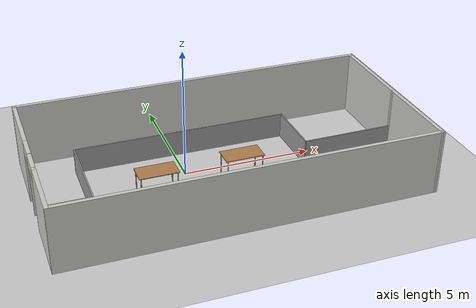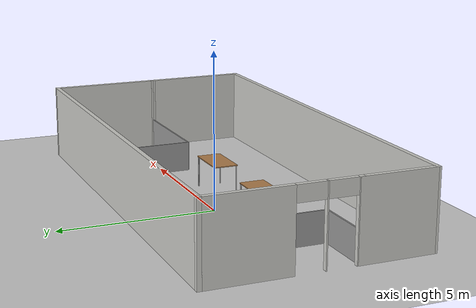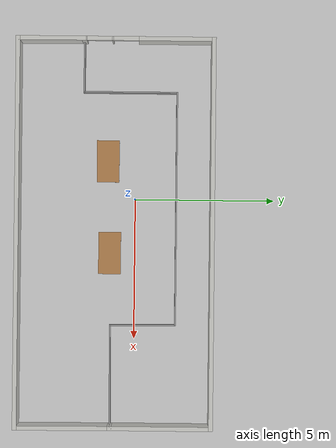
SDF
<sdf version="1.6">
 <world name="default">
  <light name="sun" type="directional">
   <pose>0 0 10 0 -0 0</pose>
   <diffuse>0.8 0.8 0.8 1</diffuse>
   <specular>0.2 0.2 0.2 1</specular>
   <attenuation>
    <range>1000</range>
    <constant>0.9</constant>
    <linear>0.01</linear>
    <quadratic>0.001</quadratic>
   </attenuation>
   <direction>-0.5 0.5 -1</direction>
  </light>
  <gravity>0 0 -9.8</gravity>
  <magnetic_field>6e-06 2.3e-05 -4.2e-05</magnetic_field>
  <atmosphere type="adiabatic"/>
  <physics name="default_physics" default="0" type="ode">
   <max_step_size>0.01</max_step_size>
   <real_time_factor>1</real_time_factor>
   <real_time_update_rate>100</real_time_update_rate>
   <ode>
    <solver>
     <type>quick</type>
     <iters>100</iters>
     <precon_iters>0</precon_iters>
     <sor>1</sor>
     <use_dynamic_moi_rescaling>0</use_dynamic_moi_rescaling>
    </solver>
    <constraints>
     <cfm>0</cfm>
     <erp>0.5</erp>
     <contact_max_correcting_vel>1000</contact_max_correcting_vel>
     <contact_surface_layer>0</contact_surface_layer>
    </constraints>
   </ode>
  </physics>
  <scene><ambient>0.4 0.4 0.4 1</ambient><background>0.7 0.7 0.7 1</background><shadows>0</shadows></scene>
  <spherical_coordinates>
   <surface_model>EARTH_WGS84</surface_model>
   <latitude_deg>0</latitude_deg>
   <longitude_deg>0</longitude_deg>
   <elevation>0</elevation>
   <heading_deg>0</heading_deg>
  </spherical_coordinates>
  <model name="mfi_floor_trial1">
   <pose>1.22275 -0.717257 0 0 -0 0</pose>
   <link name="Wall_10">
    <collision name="Wall_10_Collision">
     <geometry><box><size>1.9 0.05 1</size></box></geometry>
     <pose>0 0 0.5 0 -0 0</pose>
    </collision>
    <visual name="Wall_10_Visual">
     <pose>0 0 0.5 0 -0 0</pose>
     <geometry><box><size>1.9 0.05 1</size></box></geometry>
     <material>
      <script><uri>file://media/materials/scripts/gazebo.material</uri><name>Gazebo/Grey</name></script>
      <ambient>1 1 1 1</ambient>
     </material>
     <meta><layer>0</layer></meta>
    </visual>
    <pose>-6.0041 -1.14431 0 0 -0 3.14159</pose>
   </link>
   <link name="Wall_14">
    <collision name="Wall_14_Collision">
     <geometry><box><size>2.48851 0.15 2.5</size></box></geometry>
     <pose>0 0 1.25 0 -0 0</pose>
    </collision>
    <visual name="Wall_14_Visual">
     <pose>0 0 1.25 0 -0 0</pose>
     <geometry><box><size>2.48851 0.15 2.5</size></box></geometry>
     <material>
      <script><uri>file://media/materials/scripts/gazebo.material</uri><name>Gazebo/CeilingTiled</name></script>
      <ambient>0.729412 0.741176 0.713726 1</ambient>
     </material>
     <meta><layer>0</layer></meta>
    </visual>
    <pose>-6.92509 -2.31381 0 0 -0 -1.56738</pose>
   </link>
   <link name="Wall_16">
    <pose>-6.92809 1.16719 0 0 -0 1.5708</pose>
    <visual name="Wall_16_Visual_0">
     <pose>-2.29327 0 1.25 0 -0 0</pose>
     <geometry><box><size>0.1769 0.15 2.5</size></box></geometry>
     <material>
      <script><uri>file://media/materials/scripts/gazebo.material</uri><name>Gazebo/CeilingTiled</name></script>
      <ambient>0.729412 0.741176 0.713726 1</ambient>
     </material>
     <meta><layer>0</layer></meta>
    </visual>
    <collision name="Wall_16_Collision_0">
     <geometry><box><size>0.1769 0.15 2.5</size></box></geometry>
     <pose>-2.29327 0 1.25 0 -0 0</pose>
    </collision>
    <visual name="Wall_16_Visual_1">
     <pose>-1.28401 0 1.25 0 -0 0</pose>
     <geometry><box><size>0.041629 0.15 2.5</size></box></geometry>
     <material>
      <script><uri>file://media/materials/scripts/gazebo.material</uri><name>Gazebo/CeilingTiled</name></script>
      <ambient>0.729412 0.741176 0.713726 1</ambient>
     </material>
     <meta><layer>0</layer></meta>
    </visual>
    <collision name="Wall_16_Collision_1">
     <geometry><box><size>0.041629 0.15 2.5</size></box></geometry>
     <pose>-1.28401 0 1.25 0 -0 0</pose>
    </collision>
    <visual name="Wall_16_Visual_2">
     <pose>1.00926 0 1.25 0 -0 0</pose>
     <geometry><box><size>2.74491 0.15 2.5</size></box></geometry>
     <material>
      <script><uri>file://media/materials/scripts/gazebo.material</uri><name>Gazebo/CeilingTiled</name></script>
      <ambient>0.729412 0.741176 0.713726 1</ambient>
     </material>
     <meta><layer>0</layer></meta>
    </visual>
    <collision name="Wall_16_Collision_2">
     <geometry><box><size>2.74491 0.15 2.5</size></box></geometry>
     <pose>1.00926 0 1.25 0 -0 0</pose>
    </collision>
    <visual name="Wall_16_Visual_3">
     <pose>-1.75482 0 2.25 0 -0 0</pose>
     <geometry><box><size>0.9 0.15 0.5</size></box></geometry>
     <material>
      <script><uri>file://media/materials/scripts/gazebo.material</uri><name>Gazebo/CeilingTiled</name></script>
      <ambient>0.729412 0.741176 0.713726 1</ambient>
     </material>
     <meta><layer>0</layer></meta>
    </visual>
    <collision name="Wall_16_Collision_3">
     <geometry><box><size>0.9 0.15 0.5</size></box></geometry>
     <pose>-1.75482 0 2.25 0 -0 0</pose>
    </collision>
    <visual name="Wall_16_Visual_4">
     <pose>-0.813192 0 2.25 0 -0 0</pose>
     <geometry><box><size>0.9 0.15 0.5</size></box></geometry>
     <material>
      <script><uri>file://media/materials/scripts/gazebo.material</uri><name>Gazebo/CeilingTiled</name></script>
      <ambient>0.729412 0.741176 0.713726 1</ambient>
     </material>
     <meta><layer>0</layer></meta>
    </visual>
    <collision name="Wall_16_Collision_4">
     <geometry><box><size>0.9 0.15 0.5</size></box></geometry>
     <pose>-0.813192 0 2.25 0 -0 0</pose>
    </collision>
   </link>
   <link name="Wall_20">
    <collision name="Wall_20_Collision">
     <geometry><box><size>13.9871 0.15 2.5</size></box></geometry>
     <pose>0 0 1.25 0 -0 0</pose>
    </collision>
    <visual name="Wall_20_Visual">
     <pose>0 0 1.25 0 -0 0</pose>
     <geometry><box><size>13.9871 0.15 2.5</size></box></geometry>
     <material>
      <script><uri>file://media/materials/scripts/gazebo.material</uri><name>Gazebo/CeilingTiled</name></script>
      <ambient>0.729412 0.741176 0.713726 1</ambient>
     </material>
     <meta><layer>0</layer></meta>
    </visual>
    <pose>-0.009595 3.47869 0 0 -0 0.000723</pose>
   </link>
   <link name="Wall_21">
    <collision name="Wall_21_Collision">
     <geometry><box><size>3.75 0.15 2.5</size></box></geometry>
     <pose>0 0 1.25 0 -0 0</pose>
    </collision>
    <visual name="Wall_21_Visual">
     <pose>0 0 1.25 0 -0 0</pose>
     <geometry><box><size>3.75 0.15 2.5</size></box></geometry>
     <material>
      <script><uri>file://media/materials/scripts/gazebo.material</uri><name>Gazebo/CeilingTiled</name></script>
      <ambient>0.729412 0.741176 0.713726 1</ambient>
     </material>
     <meta><layer>0</layer></meta>
    </visual>
    <pose>6.90891 1.68369 0 0 -0 -1.5708</pose>
   </link>
   <link name="Wall_4">
    <collision name="Wall_4_Collision">
     <geometry><box><size>14 0.15 2.5</size></box></geometry>
     <pose>0 0 1.25 0 -0 0</pose>
    </collision>
    <visual name="Wall_4_Visual">
     <pose>0 0 1.25 0 -0 0</pose>
     <geometry><box><size>14 0.15 2.5</size></box></geometry>
     <material>
      <script><uri>file://media/materials/scripts/gazebo.material</uri><name>Gazebo/CeilingTiled</name></script>
      <ambient>0.729412 0.741176 0.713726 1</ambient>
     </material>
     <meta><layer>0</layer></meta>
    </visual>
    <pose>0.003905 -3.48331 0 0 -0 0</pose>
   </link>
   <link name="Wall_5">
    <collision name="Wall_5_Collision">
     <geometry><box><size>3.51705 0.15 2.5</size></box></geometry>
     <pose>0 0 1.25 0 -0 0</pose>
    </collision>
    <visual name="Wall_5_Visual">
     <pose>0 0 1.25 0 -0 0</pose>
     <geometry><box><size>3.51705 0.15 2.5</size></box></geometry>
     <material>
      <script><uri>file://media/materials/scripts/gazebo.material</uri><name>Gazebo/CeilingTiled</name></script>
      <ambient>0.729412 0.741176 0.713726 1</ambient>
     </material>
     <meta><layer>0</layer></meta>
    </visual>
    <pose>6.9189 -1.79981 0 0 -0 1.57674</pose>
   </link>
   <link name="Wall_6">
    <collision name="Wall_6_Collision">
     <geometry><box><size>3.66511 0.05 1</size></box></geometry>
     <pose>0 0 0.5 0 -0 0</pose>
    </collision>
    <visual name="Wall_6_Visual">
     <pose>0 0 0.5 0 -0 0</pose>
     <geometry><box><size>3.66511 0.05 1</size></box></geometry>
     <material>
      <script><uri>file://media/materials/scripts/gazebo.material</uri><name>Gazebo/Grey</name></script>
      <ambient>1 1 1 1</ambient>
     </material>
     <meta><layer>0</layer></meta>
    </visual>
    <pose>5.10141 -0.130308 0 0 -0 -3.13385</pose>
   </link>
   <link name="Wall_7">
    <collision name="Wall_7_Collision">
     <geometry><box><size>2.38811 0.05 1</size></box></geometry>
     <pose>0 0 0.5 0 -0 0</pose>
    </collision>
    <visual name="Wall_7_Visual">
     <pose>0 0 0.5 0 -0 0</pose>
     <geometry><box><size>2.38811 0.05 1</size></box></geometry>
     <material>
      <script><uri>file://media/materials/scripts/gazebo.material</uri><name>Gazebo/Grey</name></script>
      <ambient>1 1 1 1</ambient>
     </material>
     <meta><layer>0</layer></meta>
    </visual>
    <pose>3.2824 1.02469 0 0 -0 1.58063</pose>
   </link>
   <link name="Wall_8">
    <collision name="Wall_8_Collision">
     <geometry><box><size>8.4 0.05 1</size></box></geometry>
     <pose>0 0 0.5 0 -0 0</pose>
    </collision>
    <visual name="Wall_8_Visual">
     <pose>0 0 0.5 0 -0 0</pose>
     <geometry><box><size>8.4 0.05 1</size></box></geometry>
     <material>
      <script><uri>file://media/materials/scripts/gazebo.material</uri><name>Gazebo/Grey</name></script>
      <ambient>1 1 1 1</ambient>
     </material>
     <meta><layer>0</layer></meta>
    </visual>
    <pose>-0.904095 2.19369 0 0 -0 3.14159</pose>
   </link>
   <link name="Wall_9">
    <collision name="Wall_9_Collision">
     <geometry><box><size>3.388 0.05 1</size></box></geometry>
     <pose>0 0 0.5 0 -0 0</pose>
    </collision>
    <visual name="Wall_9_Visual">
     <pose>0 0 0.5 0 -0 0</pose>
     <geometry><box><size>3.388 0.05 1</size></box></geometry>
     <material>
      <script><uri>file://media/materials/scripts/gazebo.material</uri><name>Gazebo/Grey</name></script>
      <ambient>1 1 1 1</ambient>
     </material>
     <meta><layer>0</layer></meta>
    </visual>
    <pose>-5.07909 0.524692 0 0 -0 -1.5708</pose>
   </link>
   <static>1</static>
  </model>
  <model name="table">
   <static>1</static>
   <link name="link">
    <collision name="surface">
     <pose>0 0 1 0 -0 0</pose>
     <geometry><box><size>1.5 0.8 0.03</size></box></geometry>
     <surface><friction><ode><mu>0.6</mu><mu2>0.6</mu2></ode></friction></surface>
    </collision>
    <visual name="visual1">
     <pose>0 0 1 0 -0 0</pose>
     <geometry><box><size>1.5 0.8 0.03</size></box></geometry>
     <material>
      <script><uri>file://media/materials/scripts/gazebo.material</uri><name>Gazebo/Wood</name></script>
     </material>
    </visual>
    <collision name="front_left_leg">
     <pose>0.68 0.38 0.5 0 -0 0</pose>
     <geometry><cylinder><radius>0.02</radius><length>1</length></cylinder></geometry>
    </collision>
    <visual name="front_left_leg">
     <pose>0.68 0.38 0.5 0 -0 0</pose>
     <geometry><cylinder><radius>0.02</radius><length>1</length></cylinder></geometry>
     <material>
      <script><uri>file://media/materials/scripts/gazebo.material</uri><name>Gazebo/Grey</name></script>
     </material>
    </visual>
    <collision name="front_right_leg">
     <pose>0.68 -0.38 0.5 0 -0 0</pose>
     <geometry><cylinder><radius>0.02</radius><length>1</length></cylinder></geometry>
    </collision>
    <visual name="front_right_leg">
     <pose>0.68 -0.38 0.5 0 -0 0</pose>
     <geometry><cylinder><radius>0.02</radius><length>1</length></cylinder></geometry>
     <material>
      <script><uri>file://media/materials/scripts/gazebo.material</uri><name>Gazebo/Grey</name></script>
     </material>
    </visual>
    <collision name="back_right_leg">
     <pose>-0.68 -0.38 0.5 0 -0 0</pose>
     <geometry><cylinder><radius>0.02</radius><length>1</length></cylinder></geometry>
    </collision>
    <visual name="back_right_leg">
     <pose>-0.68 -0.38 0.5 0 -0 0</pose>
     <geometry><cylinder><radius>0.02</radius><length>1</length></cylinder></geometry>
     <material>
      <script><uri>file://media/materials/scripts/gazebo.material</uri><name>Gazebo/Grey</name></script>
     </material>
    </visual>
    <collision name="back_left_leg">
     <pose>-0.68 0.38 0.5 0 -0 0</pose>
     <geometry><cylinder><radius>0.02</radius><length>1</length></cylinder></geometry>
    </collision>
    <visual name="back_left_leg">
     <pose>-0.68 0.38 0.5 0 -0 0</pose>
     <geometry><cylinder><radius>0.02</radius><length>1</length></cylinder></geometry>
     <material>
      <script><uri>file://media/materials/scripts/gazebo.material</uri><name>Gazebo/Grey</name></script>
     </material>
    </visual>
   </link>
   <pose>-1.36737 -0.975952 0 0 -0 0</pose>
  </model>
  <model name="table_0">
   <static>1</static>
   <link name="link">
    <collision name="surface">
     <pose>0 0 1 0 -0 0</pose>
     <geometry><box><size>1.5 0.8 0.03</size></box></geometry>
     <surface><friction><ode><mu>0.6</mu><mu2>0.6</mu2></ode></friction></surface>
    </collision>
    <visual name="visual1">
     <pose>0 0 1 0 -0 0</pose>
     <geometry><box><size>1.5 0.8 0.03</size></box></geometry>
     <material>
      <script><uri>file://media/materials/scripts/gazebo.material</uri><name>Gazebo/Wood</name></script>
     </material>
    </visual>
    <collision name="front_left_leg">
     <pose>0.68 0.38 0.5 0 -0 0</pose>
     <geometry><cylinder><radius>0.02</radius><length>1</length></cylinder></geometry>
    </collision>
    <visual name="front_left_leg">
     <pose>0.68 0.38 0.5 0 -0 0</pose>
     <geometry><cylinder><radius>0.02</radius><length>1</length></cylinder></geometry>
     <material>
      <script><uri>file://media/materials/scripts/gazebo.material</uri><name>Gazebo/Grey</name></script>
     </material>
    </visual>
    <collision name="front_right_leg">
     <pose>0.68 -0.38 0.5 0 -0 0</pose>
     <geometry><cylinder><radius>0.02</radius><length>1</length></cylinder></geometry>
    </collision>
    <visual name="front_right_leg">
     <pose>0.68 -0.38 0.5 0 -0 0</pose>
     <geometry><cylinder><radius>0.02</radius><length>1</length></cylinder></geometry>
     <material>
      <script><uri>file://media/materials/scripts/gazebo.material</uri><name>Gazebo/Grey</name></script>
     </material>
    </visual>
    <collision name="back_right_leg">
     <pose>-0.68 -0.38 0.5 0 -0 0</pose>
     <geometry><cylinder><radius>0.02</radius><length>1</length></cylinder></geometry>
    </collision>
    <visual name="back_right_leg">
     <pose>-0.68 -0.38 0.5 0 -0 0</pose>
     <geometry><cylinder><radius>0.02</radius><length>1</length></cylinder></geometry>
     <material>
      <script><uri>file://media/materials/scripts/gazebo.material</uri><name>Gazebo/Grey</name></script>
     </material>
    </visual>
    <collision name="back_left_leg">
     <pose>-0.68 0.38 0.5 0 -0 0</pose>
     <geometry><cylinder><radius>0.02</radius><length>1</length></cylinder></geometry>
    </collision>
    <visual name="back_left_leg">
     <pose>-0.68 0.38 0.5 0 -0 0</pose>
     <geometry><cylinder><radius>0.02</radius><length>1</length></cylinder></geometry>
     <material>
      <script><uri>file://media/materials/scripts/gazebo.material</uri><name>Gazebo/Grey</name></script>
     </material>
    </visual>
   </link>
   <pose>1.92041 -0.893112 0 0 -0 0</pose>
  </model>
  <audio><device>default</device></audio>
  <model name="neobotix_ground_plane">
   <static>1</static>
   <link name="link">
    <collision name="collision">
     <geometry><plane><normal>0 0 1</normal><size>100 100</size></plane></geometry>
     <surface><friction><ode><mu>100</mu><mu2>50</mu2></ode></friction></surface>
    </collision>
    <visual name="visual">
     <cast_shadows>0</cast_shadows>
     <geometry><plane><normal>0 0 1</normal><size>100 100</size></plane></geometry>
     <material>
      <script>
       <uri>model://neobotix_ground_plane/materials/scripts</uri>
       <uri>model://neobotix_ground_plane/materials/textures/</uri>
       <name>NeobotixGroundPlane/Image</name>
      </script>
     </material>
    </visual>
   </link>
   <pose>15.6163 -0.783534 0 0 -0 0</pose>
  </model>
 </world>
</sdf>
